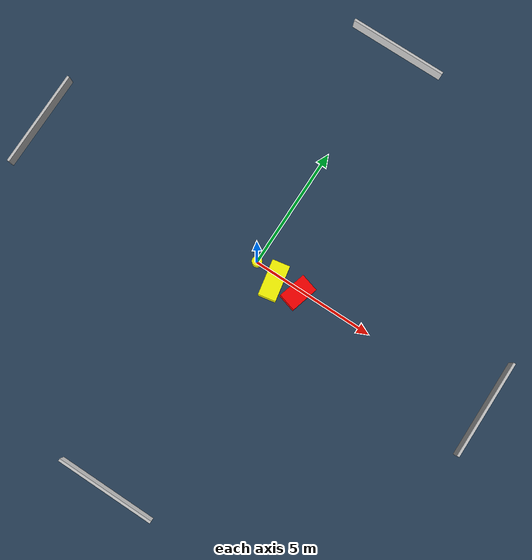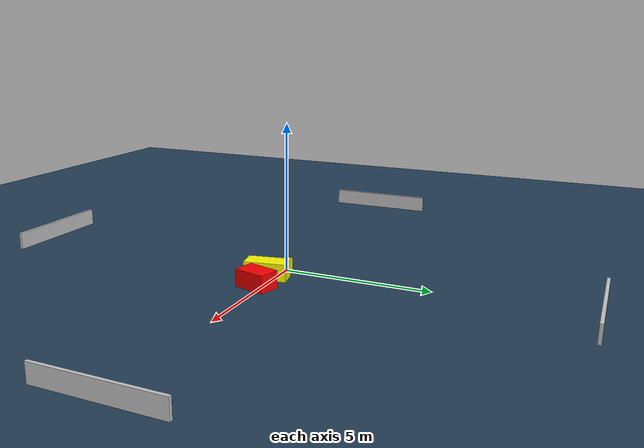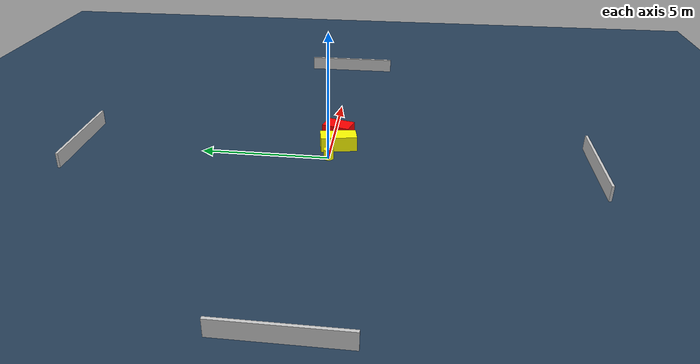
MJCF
<?xml version="1.0" ?>
<mujoco model="generated_environment">
  <option timestep="0.01" integrator="RK4" cone="elliptic"/>
  <default>
    <geom density="1"/>
  </default>
  <asset>
    <texture builtin="gradient" height="3072" name="skybox" rgb1="0.3 0.5 0.7" rgb2="0 0 0" type="skybox" width="512"/>
    <texture builtin="checker" height="300" name="groundplane" rgb1="0.2 0.3 0.4" rgb2="0.1 0.2 0.3" type="2d" width="300"/>
    <material name="groundplane" reflectance="0.2" texrepeat="5 5" texture="groundplane"/>
  </asset>
  <worldbody>
    <light dir="0 0 -1" directional="true" pos="0 0 1.5"/>
    <geom condim="3" friction="0.5 0.005 0.001" material="groundplane" name="floor" pos="0 0 0" size="0 0 0.05" type="plane"/>
    <body name="walls">
      <geom name="wall_1" condim="4" pos="-10.0 0.0 0.3" rgba="0.800000011920929 0.800000011920929 0.800000011920929 1.0" size="0.05 2.0 0.3" type="box"/>
      <geom name="wall_2" condim="4" pos="10.0 0.0 0.3" rgba="0.800000011920929 0.800000011920929 0.800000011920929 1.0" size="0.05 2.0 0.3" type="box"/>
      <geom name="wall_3" condim="4" pos="0.0 -10.0 0.3" rgba="0.800000011920929 0.800000011920929 0.800000011920929 1.0" size="2.0 0.05 0.3" type="box"/>
      <geom name="wall_4" condim="4" pos="0.0 10.0 0.3" rgba="0.800000011920929 0.800000011920929 0.800000011920929 1.0" size="2.0 0.05 0.3" type="box"/>
    </body>
    <body name="robot">
      <joint name="joint_x" type="slide" pos="0 0 0" axis="1 0 0"/>
      <joint name="joint_y" type="slide" pos="0 0 0" axis="0 1 0"/>
      <geom name="robot" type="cylinder" pos="0.0 0.0 0.2" size="0.2 0.2 0.0" mass="5.0" friction="1.0 0.005 0.0001" condim="4" rgba="1.0 1.0 0.0 1.0"/>
    </body>
    <body name="obstacle_1_movable">
      <geom name="obstacle_1_movable" condim="4" pos="0.9377628992737925 -0.2773728499181607 0.3" euler="0 0 100.49392116899732" friction="0.0 0.005 0.001" rgba="1.0 1.0 0.0 1.0" size="0.7123967830250726 0.3523599823843311 0.3" type="box" mass="0.1"/>
      <joint type="free"/>
    </body>
    <body name="obstacle_2_static">
      <geom name="obstacle_2_static" condim="4" pos="1.9398584200342193 -0.16516793756342457 0.3" euler="0 0 254.31665206712742" friction="0.0 0.005 0.001" rgba="1.0 0.0 0.0 1.0" size="0.5691279069812387 0.36995399367624593 0.3" type="box"/>
    </body>
  </worldbody>
  <actuator>
    <motor name="actuator_x" joint="joint_x" gear="1" ctrlrange="-1 1"/>
    <motor name="actuator_y" joint="joint_y" gear="1" ctrlrange="-1 1"/>
  </actuator>
</mujoco>
